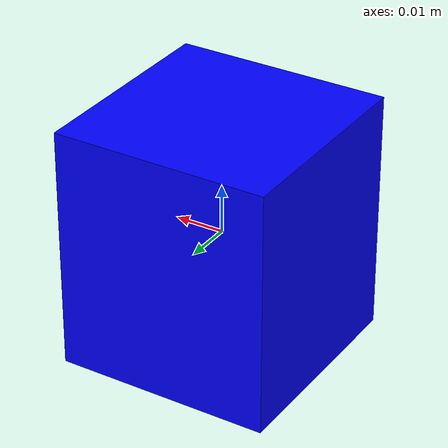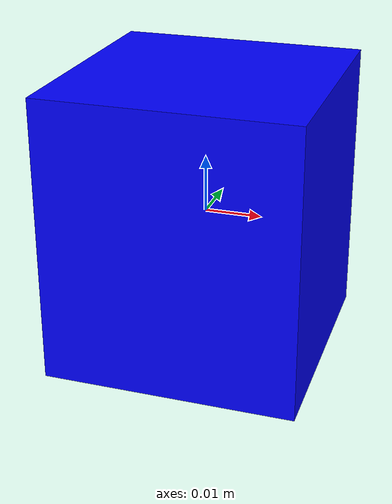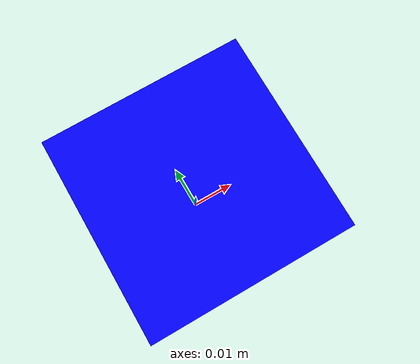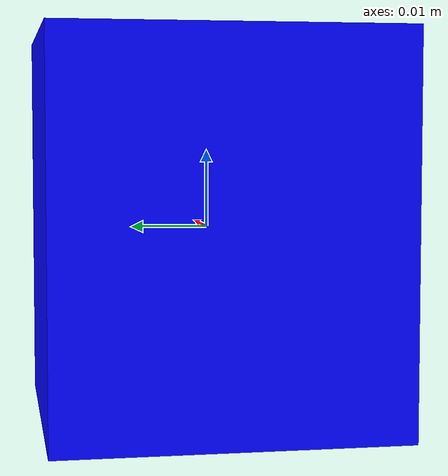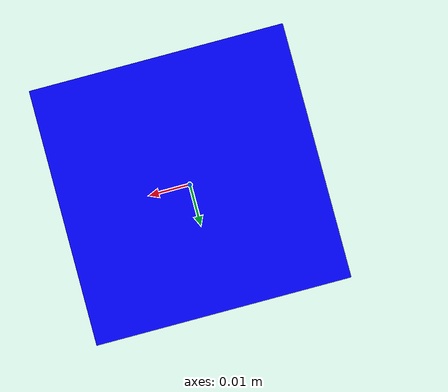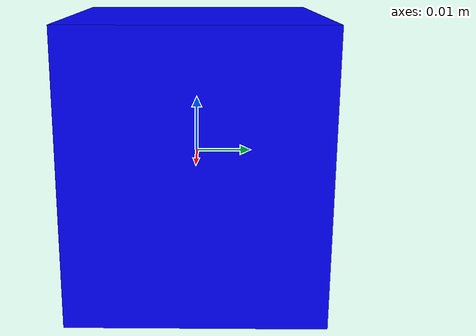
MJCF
<mujoco model="T">
  <worldbody>
    <body>
      <body name="collision">
        <geom pos="0 0 0" size="0.022 0.022 0.025" type="box" solimp="0.998 0.998 0.001" solref="0.02 1" density="100" friction="0.3 0.3 0.2" rgba="0 0 1 1" group="1" condim="4"/>
      </body>
      <site rgba="0 0 0 0" size="0.005" pos="0 0 -0.02" name="bottom_site"/>
      <site rgba="0 0 0 0" size="0.005" pos="0 0 0.02" name="top_site"/>
      <site rgba="0 0 0 0" size="0.005" pos="0.05 0.05 0" name="horizontal_radius_site"/>
    </body>
  </worldbody>
</mujoco>
